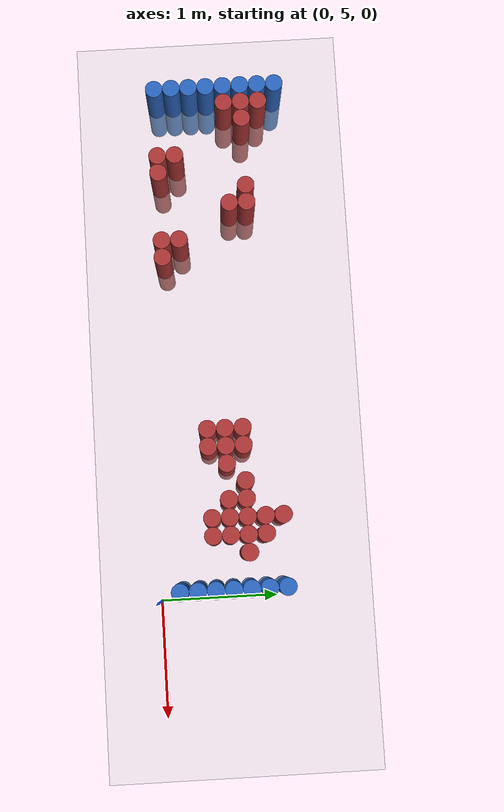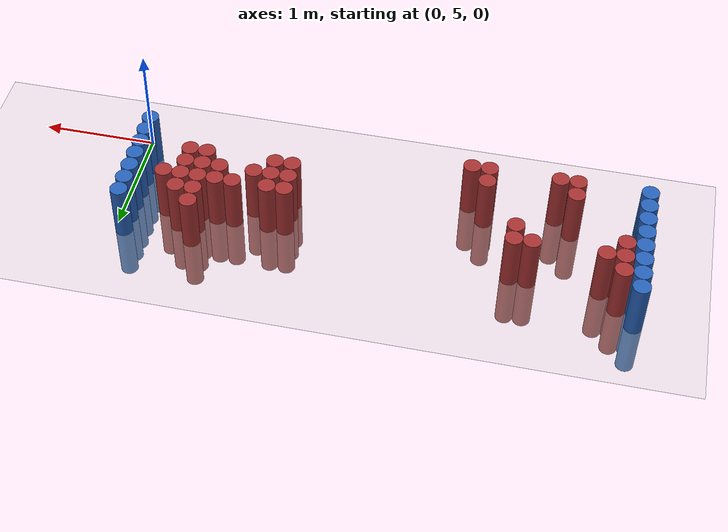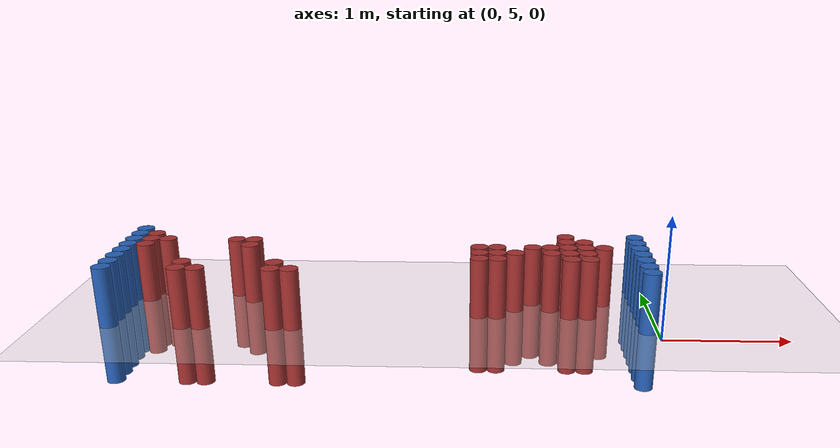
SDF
<sdf version="1.6">
 <world name="default">
  <model name="ground_plane">
   <static>1</static>
   <link name="link">
    <collision name="collision">
     <geometry><plane><normal>0 0 1</normal><size>100 100</size></plane></geometry>
     <surface><friction><ode><mu>100</mu><mu2>50</mu2></ode></friction></surface>
    </collision>
    <visual name="visual">
     <cast_shadows>0</cast_shadows>
     <geometry><plane><normal>0 0 1</normal><size>100 100</size></plane></geometry>
     <material>
      <script><uri>file://media/materials/scripts/gazebo.material</uri><name>Gazebo/Grey</name></script>
     </material>
    </visual>
   </link>
  </model>
  <model name="unit_cylinder_96">
   <static>1</static>
   <pose>-4.425000 5.175000 0.000000 0.000000 0.000000 0.000000</pose>
   <link name="link">
    <inertial>
     <mass>1</mass>
     <inertia><ixx>0.145833</ixx><ixy>0</ixy><ixz>0</ixz><iyy>0.145833</iyy><iyz>0</iyz><izz>0.125</izz></inertia>
    </inertial>
    <collision name="collision">
     <geometry><cylinder><radius>0.075000</radius><length>1</length></cylinder></geometry>
    </collision>
    <visual name="visual">
     <geometry><cylinder><radius>0.075000</radius><length>1</length></cylinder></geometry>
     <material>
      <ambient>0.152000 0.379000 0.720000 1</ambient>
      <diffuse>0.152000 0.379000 0.720000 1</diffuse>
     </material>
     <material>
      <script><name>Gazebo/Grey</name><uri>file://media/materials/scripts/gazebo.material</uri></script>
     </material>
    </visual>
   </link>
  </model>
  <model name="unit_cylinder_97">
   <static>1</static>
   <pose>-4.425000 5.325000 0.000000 0.000000 0.000000 0.000000</pose>
   <link name="link">
    <inertial>
     <mass>1</mass>
     <inertia><ixx>0.145833</ixx><ixy>0</ixy><ixz>0</ixz><iyy>0.145833</iyy><iyz>0</iyz><izz>0.125</izz></inertia>
    </inertial>
    <collision name="collision">
     <geometry><cylinder><radius>0.075000</radius><length>1</length></cylinder></geometry>
    </collision>
    <visual name="visual">
     <geometry><cylinder><radius>0.075000</radius><length>1</length></cylinder></geometry>
     <material>
      <ambient>0.152000 0.379000 0.720000 1</ambient>
      <diffuse>0.152000 0.379000 0.720000 1</diffuse>
     </material>
     <material>
      <script><name>Gazebo/Grey</name><uri>file://media/materials/scripts/gazebo.material</uri></script>
     </material>
    </visual>
   </link>
  </model>
  <model name="unit_cylinder_98">
   <static>1</static>
   <pose>-4.425000 5.475000 0.000000 0.000000 0.000000 0.000000</pose>
   <link name="link">
    <inertial>
     <mass>1</mass>
     <inertia><ixx>0.145833</ixx><ixy>0</ixy><ixz>0</ixz><iyy>0.145833</iyy><iyz>0</iyz><izz>0.125</izz></inertia>
    </inertial>
    <collision name="collision">
     <geometry><cylinder><radius>0.075000</radius><length>1</length></cylinder></geometry>
    </collision>
    <visual name="visual">
     <geometry><cylinder><radius>0.075000</radius><length>1</length></cylinder></geometry>
     <material>
      <ambient>0.152000 0.379000 0.720000 1</ambient>
      <diffuse>0.152000 0.379000 0.720000 1</diffuse>
     </material>
     <material>
      <script><name>Gazebo/Grey</name><uri>file://media/materials/scripts/gazebo.material</uri></script>
     </material>
    </visual>
   </link>
  </model>
  <model name="unit_cylinder_99">
   <static>1</static>
   <pose>-4.425000 5.625000 0.000000 0.000000 0.000000 0.000000</pose>
   <link name="link">
    <inertial>
     <mass>1</mass>
     <inertia><ixx>0.145833</ixx><ixy>0</ixy><ixz>0</ixz><iyy>0.145833</iyy><iyz>0</iyz><izz>0.125</izz></inertia>
    </inertial>
    <collision name="collision">
     <geometry><cylinder><radius>0.075000</radius><length>1</length></cylinder></geometry>
    </collision>
    <visual name="visual">
     <geometry><cylinder><radius>0.075000</radius><length>1</length></cylinder></geometry>
     <material>
      <ambient>0.152000 0.379000 0.720000 1</ambient>
      <diffuse>0.152000 0.379000 0.720000 1</diffuse>
     </material>
     <material>
      <script><name>Gazebo/Grey</name><uri>file://media/materials/scripts/gazebo.material</uri></script>
     </material>
    </visual>
   </link>
  </model>
  <model name="unit_cylinder_100">
   <static>1</static>
   <pose>-4.425000 5.775000 0.000000 0.000000 0.000000 0.000000</pose>
   <link name="link">
    <inertial>
     <mass>1</mass>
     <inertia><ixx>0.145833</ixx><ixy>0</ixy><ixz>0</ixz><iyy>0.145833</iyy><iyz>0</iyz><izz>0.125</izz></inertia>
    </inertial>
    <collision name="collision">
     <geometry><cylinder><radius>0.075000</radius><length>1</length></cylinder></geometry>
    </collision>
    <visual name="visual">
     <geometry><cylinder><radius>0.075000</radius><length>1</length></cylinder></geometry>
     <material>
      <ambient>0.152000 0.379000 0.720000 1</ambient>
      <diffuse>0.152000 0.379000 0.720000 1</diffuse>
     </material>
     <material>
      <script><name>Gazebo/Grey</name><uri>file://media/materials/scripts/gazebo.material</uri></script>
     </material>
    </visual>
   </link>
  </model>
  <model name="unit_cylinder_101">
   <static>1</static>
   <pose>-4.425000 5.925000 0.000000 0.000000 0.000000 0.000000</pose>
   <link name="link">
    <inertial>
     <mass>1</mass>
     <inertia><ixx>0.145833</ixx><ixy>0</ixy><ixz>0</ixz><iyy>0.145833</iyy><iyz>0</iyz><izz>0.125</izz></inertia>
    </inertial>
    <collision name="collision">
     <geometry><cylinder><radius>0.075000</radius><length>1</length></cylinder></geometry>
    </collision>
    <visual name="visual">
     <geometry><cylinder><radius>0.075000</radius><length>1</length></cylinder></geometry>
     <material>
      <ambient>0.152000 0.379000 0.720000 1</ambient>
      <diffuse>0.152000 0.379000 0.720000 1</diffuse>
     </material>
     <material>
      <script><name>Gazebo/Grey</name><uri>file://media/materials/scripts/gazebo.material</uri></script>
     </material>
    </visual>
   </link>
  </model>
  <model name="unit_cylinder_102">
   <static>1</static>
   <pose>-4.425000 6.075000 0.000000 0.000000 0.000000 0.000000</pose>
   <link name="link">
    <inertial>
     <mass>1</mass>
     <inertia><ixx>0.145833</ixx><ixy>0</ixy><ixz>0</ixz><iyy>0.145833</iyy><iyz>0</iyz><izz>0.125</izz></inertia>
    </inertial>
    <collision name="collision">
     <geometry><cylinder><radius>0.075000</radius><length>1</length></cylinder></geometry>
    </collision>
    <visual name="visual">
     <geometry><cylinder><radius>0.075000</radius><length>1</length></cylinder></geometry>
     <material>
      <ambient>0.152000 0.379000 0.720000 1</ambient>
      <diffuse>0.152000 0.379000 0.720000 1</diffuse>
     </material>
     <material>
      <script><name>Gazebo/Grey</name><uri>file://media/materials/scripts/gazebo.material</uri></script>
     </material>
    </visual>
   </link>
  </model>
  <model name="unit_cylinder_103">
   <static>1</static>
   <pose>-4.425000 6.225000 0.000000 0.000000 0.000000 0.000000</pose>
   <link name="link">
    <inertial>
     <mass>1</mass>
     <inertia><ixx>0.145833</ixx><ixy>0</ixy><ixz>0</ixz><iyy>0.145833</iyy><iyz>0</iyz><izz>0.125</izz></inertia>
    </inertial>
    <collision name="collision">
     <geometry><cylinder><radius>0.075000</radius><length>1</length></cylinder></geometry>
    </collision>
    <visual name="visual">
     <geometry><cylinder><radius>0.075000</radius><length>1</length></cylinder></geometry>
     <material>
      <ambient>0.152000 0.379000 0.720000 1</ambient>
      <diffuse>0.152000 0.379000 0.720000 1</diffuse>
     </material>
     <material>
      <script><name>Gazebo/Grey</name><uri>file://media/materials/scripts/gazebo.material</uri></script>
     </material>
    </visual>
   </link>
  </model>
  <model name="unit_cylinder_126">
   <static>1</static>
   <pose>-4.275000 5.775000 0.000000 0.000000 0.000000 0.000000</pose>
   <link name="link">
    <inertial>
     <mass>1</mass>
     <inertia><ixx>0.145833</ixx><ixy>0</ixy><ixz>0</ixz><iyy>0.145833</iyy><iyz>0</iyz><izz>0.125</izz></inertia>
    </inertial>
    <collision name="collision">
     <geometry><cylinder><radius>0.075000</radius><length>1</length></cylinder></geometry>
    </collision>
    <visual name="visual">
     <geometry><cylinder><radius>0.075000</radius><length>1</length></cylinder></geometry>
     <material>
      <ambient>0.648000 0.192000 0.192000 1</ambient>
      <diffuse>0.648000 0.192000 0.192000 1</diffuse>
     </material>
     <material>
      <script><name>Gazebo/Grey</name><uri>file://media/materials/scripts/gazebo.material</uri></script>
     </material>
    </visual>
   </link>
  </model>
  <model name="unit_cylinder_127">
   <static>1</static>
   <pose>-4.275000 5.925000 0.000000 0.000000 0.000000 0.000000</pose>
   <link name="link">
    <inertial>
     <mass>1</mass>
     <inertia><ixx>0.145833</ixx><ixy>0</ixy><ixz>0</ixz><iyy>0.145833</iyy><iyz>0</iyz><izz>0.125</izz></inertia>
    </inertial>
    <collision name="collision">
     <geometry><cylinder><radius>0.075000</radius><length>1</length></cylinder></geometry>
    </collision>
    <visual name="visual">
     <geometry><cylinder><radius>0.075000</radius><length>1</length></cylinder></geometry>
     <material>
      <ambient>0.648000 0.192000 0.192000 1</ambient>
      <diffuse>0.648000 0.192000 0.192000 1</diffuse>
     </material>
     <material>
      <script><name>Gazebo/Grey</name><uri>file://media/materials/scripts/gazebo.material</uri></script>
     </material>
    </visual>
   </link>
  </model>
  <model name="unit_cylinder_128">
   <static>1</static>
   <pose>-4.275000 6.075000 0.000000 0.000000 0.000000 0.000000</pose>
   <link name="link">
    <inertial>
     <mass>1</mass>
     <inertia><ixx>0.145833</ixx><ixy>0</ixy><ixz>0</ixz><iyy>0.145833</iyy><iyz>0</iyz><izz>0.125</izz></inertia>
    </inertial>
    <collision name="collision">
     <geometry><cylinder><radius>0.075000</radius><length>1</length></cylinder></geometry>
    </collision>
    <visual name="visual">
     <geometry><cylinder><radius>0.075000</radius><length>1</length></cylinder></geometry>
     <material>
      <ambient>0.648000 0.192000 0.192000 1</ambient>
      <diffuse>0.648000 0.192000 0.192000 1</diffuse>
     </material>
     <material>
      <script><name>Gazebo/Grey</name><uri>file://media/materials/scripts/gazebo.material</uri></script>
     </material>
    </visual>
   </link>
  </model>
  <model name="unit_cylinder_137">
   <static>1</static>
   <pose>-4.125000 5.925000 0.000000 0.000000 0.000000 0.000000</pose>
   <link name="link">
    <inertial>
     <mass>1</mass>
     <inertia><ixx>0.145833</ixx><ixy>0</ixy><ixz>0</ixz><iyy>0.145833</iyy><iyz>0</iyz><izz>0.125</izz></inertia>
    </inertial>
    <collision name="collision">
     <geometry><cylinder><radius>0.075000</radius><length>1</length></cylinder></geometry>
    </collision>
    <visual name="visual">
     <geometry><cylinder><radius>0.075000</radius><length>1</length></cylinder></geometry>
     <material>
      <ambient>0.648000 0.192000 0.192000 1</ambient>
      <diffuse>0.648000 0.192000 0.192000 1</diffuse>
     </material>
     <material>
      <script><name>Gazebo/Grey</name><uri>file://media/materials/scripts/gazebo.material</uri></script>
     </material>
    </visual>
   </link>
  </model>
  <model name="unit_cylinder_153">
   <static>1</static>
   <pose>-3.825000 5.175000 0.000000 0.000000 0.000000 0.000000</pose>
   <link name="link">
    <inertial>
     <mass>1</mass>
     <inertia><ixx>0.145833</ixx><ixy>0</ixy><ixz>0</ixz><iyy>0.145833</iyy><iyz>0</iyz><izz>0.125</izz></inertia>
    </inertial>
    <collision name="collision">
     <geometry><cylinder><radius>0.075000</radius><length>1</length></cylinder></geometry>
    </collision>
    <visual name="visual">
     <geometry><cylinder><radius>0.075000</radius><length>1</length></cylinder></geometry>
     <material>
      <ambient>0.648000 0.192000 0.192000 1</ambient>
      <diffuse>0.648000 0.192000 0.192000 1</diffuse>
     </material>
     <material>
      <script><name>Gazebo/Grey</name><uri>file://media/materials/scripts/gazebo.material</uri></script>
     </material>
    </visual>
   </link>
  </model>
  <model name="unit_cylinder_154">
   <static>1</static>
   <pose>-3.825000 5.325000 0.000000 0.000000 0.000000 0.000000</pose>
   <link name="link">
    <inertial>
     <mass>1</mass>
     <inertia><ixx>0.145833</ixx><ixy>0</ixy><ixz>0</ixz><iyy>0.145833</iyy><iyz>0</iyz><izz>0.125</izz></inertia>
    </inertial>
    <collision name="collision">
     <geometry><cylinder><radius>0.075000</radius><length>1</length></cylinder></geometry>
    </collision>
    <visual name="visual">
     <geometry><cylinder><radius>0.075000</radius><length>1</length></cylinder></geometry>
     <material>
      <ambient>0.648000 0.192000 0.192000 1</ambient>
      <diffuse>0.648000 0.192000 0.192000 1</diffuse>
     </material>
     <material>
      <script><name>Gazebo/Grey</name><uri>file://media/materials/scripts/gazebo.material</uri></script>
     </material>
    </visual>
   </link>
  </model>
  <model name="unit_cylinder_161">
   <static>1</static>
   <pose>-3.675000 5.175000 0.000000 0.000000 0.000000 0.000000</pose>
   <link name="link">
    <inertial>
     <mass>1</mass>
     <inertia><ixx>0.145833</ixx><ixy>0</ixy><ixz>0</ixz><iyy>0.145833</iyy><iyz>0</iyz><izz>0.125</izz></inertia>
    </inertial>
    <collision name="collision">
     <geometry><cylinder><radius>0.075000</radius><length>1</length></cylinder></geometry>
    </collision>
    <visual name="visual">
     <geometry><cylinder><radius>0.075000</radius><length>1</length></cylinder></geometry>
     <material>
      <ambient>0.648000 0.192000 0.192000 1</ambient>
      <diffuse>0.648000 0.192000 0.192000 1</diffuse>
     </material>
     <material>
      <script><name>Gazebo/Grey</name><uri>file://media/materials/scripts/gazebo.material</uri></script>
     </material>
    </visual>
   </link>
  </model>
  <model name="unit_cylinder_172">
   <static>1</static>
   <pose>-3.525000 5.925000 0.000000 0.000000 0.000000 0.000000</pose>
   <link name="link">
    <inertial>
     <mass>1</mass>
     <inertia><ixx>0.145833</ixx><ixy>0</ixy><ixz>0</ixz><iyy>0.145833</iyy><iyz>0</iyz><izz>0.125</izz></inertia>
    </inertial>
    <collision name="collision">
     <geometry><cylinder><radius>0.075000</radius><length>1</length></cylinder></geometry>
    </collision>
    <visual name="visual">
     <geometry><cylinder><radius>0.075000</radius><length>1</length></cylinder></geometry>
     <material>
      <ambient>0.648000 0.192000 0.192000 1</ambient>
      <diffuse>0.648000 0.192000 0.192000 1</diffuse>
     </material>
     <material>
      <script><name>Gazebo/Grey</name><uri>file://media/materials/scripts/gazebo.material</uri></script>
     </material>
    </visual>
   </link>
  </model>
  <model name="unit_cylinder_180">
   <static>1</static>
   <pose>-3.375000 5.775000 0.000000 0.000000 0.000000 0.000000</pose>
   <link name="link">
    <inertial>
     <mass>1</mass>
     <inertia><ixx>0.145833</ixx><ixy>0</ixy><ixz>0</ixz><iyy>0.145833</iyy><iyz>0</iyz><izz>0.125</izz></inertia>
    </inertial>
    <collision name="collision">
     <geometry><cylinder><radius>0.075000</radius><length>1</length></cylinder></geometry>
    </collision>
    <visual name="visual">
     <geometry><cylinder><radius>0.075000</radius><length>1</length></cylinder></geometry>
     <material>
      <ambient>0.648000 0.192000 0.192000 1</ambient>
      <diffuse>0.648000 0.192000 0.192000 1</diffuse>
     </material>
     <material>
      <script><name>Gazebo/Grey</name><uri>file://media/materials/scripts/gazebo.material</uri></script>
     </material>
    </visual>
   </link>
  </model>
  <model name="unit_cylinder_181">
   <static>1</static>
   <pose>-3.375000 5.925000 0.000000 0.000000 0.000000 0.000000</pose>
   <link name="link">
    <inertial>
     <mass>1</mass>
     <inertia><ixx>0.145833</ixx><ixy>0</ixy><ixz>0</ixz><iyy>0.145833</iyy><iyz>0</iyz><izz>0.125</izz></inertia>
    </inertial>
    <collision name="collision">
     <geometry><cylinder><radius>0.075000</radius><length>1</length></cylinder></geometry>
    </collision>
    <visual name="visual">
     <geometry><cylinder><radius>0.075000</radius><length>1</length></cylinder></geometry>
     <material>
      <ambient>0.648000 0.192000 0.192000 1</ambient>
      <diffuse>0.648000 0.192000 0.192000 1</diffuse>
     </material>
     <material>
      <script><name>Gazebo/Grey</name><uri>file://media/materials/scripts/gazebo.material</uri></script>
     </material>
    </visual>
   </link>
  </model>
  <model name="unit_cylinder_198">
   <static>1</static>
   <pose>-3.075000 5.175000 0.000000 0.000000 0.000000 0.000000</pose>
   <link name="link">
    <inertial>
     <mass>1</mass>
     <inertia><ixx>0.145833</ixx><ixy>0</ixy><ixz>0</ixz><iyy>0.145833</iyy><iyz>0</iyz><izz>0.125</izz></inertia>
    </inertial>
    <collision name="collision">
     <geometry><cylinder><radius>0.075000</radius><length>1</length></cylinder></geometry>
    </collision>
    <visual name="visual">
     <geometry><cylinder><radius>0.075000</radius><length>1</length></cylinder></geometry>
     <material>
      <ambient>0.648000 0.192000 0.192000 1</ambient>
      <diffuse>0.648000 0.192000 0.192000 1</diffuse>
     </material>
     <material>
      <script><name>Gazebo/Grey</name><uri>file://media/materials/scripts/gazebo.material</uri></script>
     </material>
    </visual>
   </link>
  </model>
  <model name="unit_cylinder_199">
   <static>1</static>
   <pose>-3.075000 5.325000 0.000000 0.000000 0.000000 0.000000</pose>
   <link name="link">
    <inertial>
     <mass>1</mass>
     <inertia><ixx>0.145833</ixx><ixy>0</ixy><ixz>0</ixz><iyy>0.145833</iyy><iyz>0</iyz><izz>0.125</izz></inertia>
    </inertial>
    <collision name="collision">
     <geometry><cylinder><radius>0.075000</radius><length>1</length></cylinder></geometry>
    </collision>
    <visual name="visual">
     <geometry><cylinder><radius>0.075000</radius><length>1</length></cylinder></geometry>
     <material>
      <ambient>0.648000 0.192000 0.192000 1</ambient>
      <diffuse>0.648000 0.192000 0.192000 1</diffuse>
     </material>
     <material>
      <script><name>Gazebo/Grey</name><uri>file://media/materials/scripts/gazebo.material</uri></script>
     </material>
    </visual>
   </link>
  </model>
  <model name="unit_cylinder_209">
   <static>1</static>
   <pose>-2.925000 5.175000 0.000000 0.000000 0.000000 0.000000</pose>
   <link name="link">
    <inertial>
     <mass>1</mass>
     <inertia><ixx>0.145833</ixx><ixy>0</ixy><ixz>0</ixz><iyy>0.145833</iyy><iyz>0</iyz><izz>0.125</izz></inertia>
    </inertial>
    <collision name="collision">
     <geometry><cylinder><radius>0.075000</radius><length>1</length></cylinder></geometry>
    </collision>
    <visual name="visual">
     <geometry><cylinder><radius>0.075000</radius><length>1</length></cylinder></geometry>
     <material>
      <ambient>0.648000 0.192000 0.192000 1</ambient>
      <diffuse>0.648000 0.192000 0.192000 1</diffuse>
     </material>
     <material>
      <script><name>Gazebo/Grey</name><uri>file://media/materials/scripts/gazebo.material</uri></script>
     </material>
    </visual>
   </link>
  </model>
  <model name="unit_cylinder_229">
   <static>1</static>
   <pose>-1.425000 5.475000 0.000000 0.000000 0.000000 0.000000</pose>
   <link name="link">
    <inertial>
     <mass>1</mass>
     <inertia><ixx>0.145833</ixx><ixy>0</ixy><ixz>0</ixz><iyy>0.145833</iyy><iyz>0</iyz><izz>0.125</izz></inertia>
    </inertial>
    <collision name="collision">
     <geometry><cylinder><radius>0.075000</radius><length>1</length></cylinder></geometry>
    </collision>
    <visual name="visual">
     <geometry><cylinder><radius>0.075000</radius><length>1</length></cylinder></geometry>
     <material>
      <ambient>0.648000 0.192000 0.192000 1</ambient>
      <diffuse>0.648000 0.192000 0.192000 1</diffuse>
     </material>
     <material>
      <script><name>Gazebo/Grey</name><uri>file://media/materials/scripts/gazebo.material</uri></script>
     </material>
    </visual>
   </link>
  </model>
  <model name="unit_cylinder_230">
   <static>1</static>
   <pose>-1.425000 5.625000 0.000000 0.000000 0.000000 0.000000</pose>
   <link name="link">
    <inertial>
     <mass>1</mass>
     <inertia><ixx>0.145833</ixx><ixy>0</ixy><ixz>0</ixz><iyy>0.145833</iyy><iyz>0</iyz><izz>0.125</izz></inertia>
    </inertial>
    <collision name="collision">
     <geometry><cylinder><radius>0.075000</radius><length>1</length></cylinder></geometry>
    </collision>
    <visual name="visual">
     <geometry><cylinder><radius>0.075000</radius><length>1</length></cylinder></geometry>
     <material>
      <ambient>0.648000 0.192000 0.192000 1</ambient>
      <diffuse>0.648000 0.192000 0.192000 1</diffuse>
     </material>
     <material>
      <script><name>Gazebo/Grey</name><uri>file://media/materials/scripts/gazebo.material</uri></script>
     </material>
    </visual>
   </link>
  </model>
  <model name="unit_cylinder_231">
   <static>1</static>
   <pose>-1.425000 5.775000 0.000000 0.000000 0.000000 0.000000</pose>
   <link name="link">
    <inertial>
     <mass>1</mass>
     <inertia><ixx>0.145833</ixx><ixy>0</ixy><ixz>0</ixz><iyy>0.145833</iyy><iyz>0</iyz><izz>0.125</izz></inertia>
    </inertial>
    <collision name="collision">
     <geometry><cylinder><radius>0.075000</radius><length>1</length></cylinder></geometry>
    </collision>
    <visual name="visual">
     <geometry><cylinder><radius>0.075000</radius><length>1</length></cylinder></geometry>
     <material>
      <ambient>0.648000 0.192000 0.192000 1</ambient>
      <diffuse>0.648000 0.192000 0.192000 1</diffuse>
     </material>
     <material>
      <script><name>Gazebo/Grey</name><uri>file://media/materials/scripts/gazebo.material</uri></script>
     </material>
    </visual>
   </link>
  </model>
  <model name="unit_cylinder_235">
   <static>1</static>
   <pose>-1.275000 5.475000 0.000000 0.000000 0.000000 0.000000</pose>
   <link name="link">
    <inertial>
     <mass>1</mass>
     <inertia><ixx>0.145833</ixx><ixy>0</ixy><ixz>0</ixz><iyy>0.145833</iyy><iyz>0</iyz><izz>0.125</izz></inertia>
    </inertial>
    <collision name="collision">
     <geometry><cylinder><radius>0.075000</radius><length>1</length></cylinder></geometry>
    </collision>
    <visual name="visual">
     <geometry><cylinder><radius>0.075000</radius><length>1</length></cylinder></geometry>
     <material>
      <ambient>0.648000 0.192000 0.192000 1</ambient>
      <diffuse>0.648000 0.192000 0.192000 1</diffuse>
     </material>
     <material>
      <script><name>Gazebo/Grey</name><uri>file://media/materials/scripts/gazebo.material</uri></script>
     </material>
    </visual>
   </link>
  </model>
  <model name="unit_cylinder_236">
   <static>1</static>
   <pose>-1.275000 5.625000 0.000000 0.000000 0.000000 0.000000</pose>
   <link name="link">
    <inertial>
     <mass>1</mass>
     <inertia><ixx>0.145833</ixx><ixy>0</ixy><ixz>0</ixz><iyy>0.145833</iyy><iyz>0</iyz><izz>0.125</izz></inertia>
    </inertial>
    <collision name="collision">
     <geometry><cylinder><radius>0.075000</radius><length>1</length></cylinder></geometry>
    </collision>
    <visual name="visual">
     <geometry><cylinder><radius>0.075000</radius><length>1</length></cylinder></geometry>
     <material>
      <ambient>0.648000 0.192000 0.192000 1</ambient>
      <diffuse>0.648000 0.192000 0.192000 1</diffuse>
     </material>
     <material>
      <script><name>Gazebo/Grey</name><uri>file://media/materials/scripts/gazebo.material</uri></script>
     </material>
    </visual>
   </link>
  </model>
  <model name="unit_cylinder_237">
   <static>1</static>
   <pose>-1.275000 5.775000 0.000000 0.000000 0.000000 0.000000</pose>
   <link name="link">
    <inertial>
     <mass>1</mass>
     <inertia><ixx>0.145833</ixx><ixy>0</ixy><ixz>0</ixz><iyy>0.145833</iyy><iyz>0</iyz><izz>0.125</izz></inertia>
    </inertial>
    <collision name="collision">
     <geometry><cylinder><radius>0.075000</radius><length>1</length></cylinder></geometry>
    </collision>
    <visual name="visual">
     <geometry><cylinder><radius>0.075000</radius><length>1</length></cylinder></geometry>
     <material>
      <ambient>0.648000 0.192000 0.192000 1</ambient>
      <diffuse>0.648000 0.192000 0.192000 1</diffuse>
     </material>
     <material>
      <script><name>Gazebo/Grey</name><uri>file://media/materials/scripts/gazebo.material</uri></script>
     </material>
    </visual>
   </link>
  </model>
  <model name="unit_cylinder_245">
   <static>1</static>
   <pose>-1.125000 5.625000 0.000000 0.000000 0.000000 0.000000</pose>
   <link name="link">
    <inertial>
     <mass>1</mass>
     <inertia><ixx>0.145833</ixx><ixy>0</ixy><ixz>0</ixz><iyy>0.145833</iyy><iyz>0</iyz><izz>0.125</izz></inertia>
    </inertial>
    <collision name="collision">
     <geometry><cylinder><radius>0.075000</radius><length>1</length></cylinder></geometry>
    </collision>
    <visual name="visual">
     <geometry><cylinder><radius>0.075000</radius><length>1</length></cylinder></geometry>
     <material>
      <ambient>0.648000 0.192000 0.192000 1</ambient>
      <diffuse>0.648000 0.192000 0.192000 1</diffuse>
     </material>
     <material>
      <script><name>Gazebo/Grey</name><uri>file://media/materials/scripts/gazebo.material</uri></script>
     </material>
    </visual>
   </link>
  </model>
  <model name="unit_cylinder_253">
   <static>1</static>
   <pose>-0.975000 5.775000 0.000000 0.000000 0.000000 0.000000</pose>
   <link name="link">
    <inertial>
     <mass>1</mass>
     <inertia><ixx>0.145833</ixx><ixy>0</ixy><ixz>0</ixz><iyy>0.145833</iyy><iyz>0</iyz><izz>0.125</izz></inertia>
    </inertial>
    <collision name="collision">
     <geometry><cylinder><radius>0.075000</radius><length>1</length></cylinder></geometry>
    </collision>
    <visual name="visual">
     <geometry><cylinder><radius>0.075000</radius><length>1</length></cylinder></geometry>
     <material>
      <ambient>0.648000 0.192000 0.192000 1</ambient>
      <diffuse>0.648000 0.192000 0.192000 1</diffuse>
     </material>
     <material>
      <script><name>Gazebo/Grey</name><uri>file://media/materials/scripts/gazebo.material</uri></script>
     </material>
    </visual>
   </link>
  </model>
  <model name="unit_cylinder_257">
   <static>1</static>
   <pose>-0.825000 5.625000 0.000000 0.000000 0.000000 0.000000</pose>
   <link name="link">
    <inertial>
     <mass>1</mass>
     <inertia><ixx>0.145833</ixx><ixy>0</ixy><ixz>0</ixz><iyy>0.145833</iyy><iyz>0</iyz><izz>0.125</izz></inertia>
    </inertial>
    <collision name="collision">
     <geometry><cylinder><radius>0.075000</radius><length>1</length></cylinder></geometry>
    </collision>
    <visual name="visual">
     <geometry><cylinder><radius>0.075000</radius><length>1</length></cylinder></geometry>
     <material>
      <ambient>0.648000 0.192000 0.192000 1</ambient>
      <diffuse>0.648000 0.192000 0.192000 1</diffuse>
     </material>
     <material>
      <script><name>Gazebo/Grey</name><uri>file://media/materials/scripts/gazebo.material</uri></script>
     </material>
    </visual>
   </link>
  </model>
  <model name="unit_cylinder_258">
   <static>1</static>
   <pose>-0.825000 5.775000 0.000000 0.000000 0.000000 0.000000</pose>
   <link name="link">
    <inertial>
     <mass>1</mass>
     <inertia><ixx>0.145833</ixx><ixy>0</ixy><ixz>0</ixz><iyy>0.145833</iyy><iyz>0</iyz><izz>0.125</izz></inertia>
    </inertial>
    <collision name="collision">
     <geometry><cylinder><radius>0.075000</radius><length>1</length></cylinder></geometry>
    </collision>
    <visual name="visual">
     <geometry><cylinder><radius>0.075000</radius><length>1</length></cylinder></geometry>
     <material>
      <ambient>0.648000 0.192000 0.192000 1</ambient>
      <diffuse>0.648000 0.192000 0.192000 1</diffuse>
     </material>
     <material>
      <script><name>Gazebo/Grey</name><uri>file://media/materials/scripts/gazebo.material</uri></script>
     </material>
    </visual>
   </link>
  </model>
  <model name="unit_cylinder_261">
   <static>1</static>
   <pose>-0.675000 5.475000 0.000000 0.000000 0.000000 0.000000</pose>
   <link name="link">
    <inertial>
     <mass>1</mass>
     <inertia><ixx>0.145833</ixx><ixy>0</ixy><ixz>0</ixz><iyy>0.145833</iyy><iyz>0</iyz><izz>0.125</izz></inertia>
    </inertial>
    <collision name="collision">
     <geometry><cylinder><radius>0.075000</radius><length>1</length></cylinder></geometry>
    </collision>
    <visual name="visual">
     <geometry><cylinder><radius>0.075000</radius><length>1</length></cylinder></geometry>
     <material>
      <ambient>0.648000 0.192000 0.192000 1</ambient>
      <diffuse>0.648000 0.192000 0.192000 1</diffuse>
     </material>
     <material>
      <script><name>Gazebo/Grey</name><uri>file://media/materials/scripts/gazebo.material</uri></script>
     </material>
    </visual>
   </link>
  </model>
  <model name="unit_cylinder_262">
   <static>1</static>
   <pose>-0.675000 5.625000 0.000000 0.000000 0.000000 0.000000</pose>
   <link name="link">
    <inertial>
     <mass>1</mass>
     <inertia><ixx>0.145833</ixx><ixy>0</ixy><ixz>0</ixz><iyy>0.145833</iyy><iyz>0</iyz><izz>0.125</izz></inertia>
    </inertial>
    <collision name="collision">
     <geometry><cylinder><radius>0.075000</radius><length>1</length></cylinder></geometry>
    </collision>
    <visual name="visual">
     <geometry><cylinder><radius>0.075000</radius><length>1</length></cylinder></geometry>
     <material>
      <ambient>0.648000 0.192000 0.192000 1</ambient>
      <diffuse>0.648000 0.192000 0.192000 1</diffuse>
     </material>
     <material>
      <script><name>Gazebo/Grey</name><uri>file://media/materials/scripts/gazebo.material</uri></script>
     </material>
    </visual>
   </link>
  </model>
  <model name="unit_cylinder_263">
   <static>1</static>
   <pose>-0.675000 5.775000 0.000000 0.000000 0.000000 0.000000</pose>
   <link name="link">
    <inertial>
     <mass>1</mass>
     <inertia><ixx>0.145833</ixx><ixy>0</ixy><ixz>0</ixz><iyy>0.145833</iyy><iyz>0</iyz><izz>0.125</izz></inertia>
    </inertial>
    <collision name="collision">
     <geometry><cylinder><radius>0.075000</radius><length>1</length></cylinder></geometry>
    </collision>
    <visual name="visual">
     <geometry><cylinder><radius>0.075000</radius><length>1</length></cylinder></geometry>
     <material>
      <ambient>0.648000 0.192000 0.192000 1</ambient>
      <diffuse>0.648000 0.192000 0.192000 1</diffuse>
     </material>
     <material>
      <script><name>Gazebo/Grey</name><uri>file://media/materials/scripts/gazebo.material</uri></script>
     </material>
    </visual>
   </link>
  </model>
  <model name="unit_cylinder_264">
   <static>1</static>
   <pose>-0.675000 5.925000 0.000000 0.000000 0.000000 0.000000</pose>
   <link name="link">
    <inertial>
     <mass>1</mass>
     <inertia><ixx>0.145833</ixx><ixy>0</ixy><ixz>0</ixz><iyy>0.145833</iyy><iyz>0</iyz><izz>0.125</izz></inertia>
    </inertial>
    <collision name="collision">
     <geometry><cylinder><radius>0.075000</radius><length>1</length></cylinder></geometry>
    </collision>
    <visual name="visual">
     <geometry><cylinder><radius>0.075000</radius><length>1</length></cylinder></geometry>
     <material>
      <ambient>0.648000 0.192000 0.192000 1</ambient>
      <diffuse>0.648000 0.192000 0.192000 1</diffuse>
     </material>
     <material>
      <script><name>Gazebo/Grey</name><uri>file://media/materials/scripts/gazebo.material</uri></script>
     </material>
    </visual>
   </link>
  </model>
  <model name="unit_cylinder_265">
   <static>1</static>
   <pose>-0.675000 6.075000 0.000000 0.000000 0.000000 0.000000</pose>
   <link name="link">
    <inertial>
     <mass>1</mass>
     <inertia><ixx>0.145833</ixx><ixy>0</ixy><ixz>0</ixz><iyy>0.145833</iyy><iyz>0</iyz><izz>0.125</izz></inertia>
    </inertial>
    <collision name="collision">
     <geometry><cylinder><radius>0.075000</radius><length>1</length></cylinder></geometry>
    </collision>
    <visual name="visual">
     <geometry><cylinder><radius>0.075000</radius><length>1</length></cylinder></geometry>
     <material>
      <ambient>0.648000 0.192000 0.192000 1</ambient>
      <diffuse>0.648000 0.192000 0.192000 1</diffuse>
     </material>
     <material>
      <script><name>Gazebo/Grey</name><uri>file://media/materials/scripts/gazebo.material</uri></script>
     </material>
    </visual>
   </link>
  </model>
  <model name="unit_cylinder_276">
   <static>1</static>
   <pose>-0.525000 5.475000 0.000000 0.000000 0.000000 0.000000</pose>
   <link name="link">
    <inertial>
     <mass>1</mass>
     <inertia><ixx>0.145833</ixx><ixy>0</ixy><ixz>0</ixz><iyy>0.145833</iyy><iyz>0</iyz><izz>0.125</izz></inertia>
    </inertial>
    <collision name="collision">
     <geometry><cylinder><radius>0.075000</radius><length>1</length></cylinder></geometry>
    </collision>
    <visual name="visual">
     <geometry><cylinder><radius>0.075000</radius><length>1</length></cylinder></geometry>
     <material>
      <ambient>0.648000 0.192000 0.192000 1</ambient>
      <diffuse>0.648000 0.192000 0.192000 1</diffuse>
     </material>
     <material>
      <script><name>Gazebo/Grey</name><uri>file://media/materials/scripts/gazebo.material</uri></script>
     </material>
    </visual>
   </link>
  </model>
  <model name="unit_cylinder_277">
   <static>1</static>
   <pose>-0.525000 5.625000 0.000000 0.000000 0.000000 0.000000</pose>
   <link name="link">
    <inertial>
     <mass>1</mass>
     <inertia><ixx>0.145833</ixx><ixy>0</ixy><ixz>0</ixz><iyy>0.145833</iyy><iyz>0</iyz><izz>0.125</izz></inertia>
    </inertial>
    <collision name="collision">
     <geometry><cylinder><radius>0.075000</radius><length>1</length></cylinder></geometry>
    </collision>
    <visual name="visual">
     <geometry><cylinder><radius>0.075000</radius><length>1</length></cylinder></geometry>
     <material>
      <ambient>0.648000 0.192000 0.192000 1</ambient>
      <diffuse>0.648000 0.192000 0.192000 1</diffuse>
     </material>
     <material>
      <script><name>Gazebo/Grey</name><uri>file://media/materials/scripts/gazebo.material</uri></script>
     </material>
    </visual>
   </link>
  </model>
  <model name="unit_cylinder_278">
   <static>1</static>
   <pose>-0.525000 5.775000 0.000000 0.000000 0.000000 0.000000</pose>
   <link name="link">
    <inertial>
     <mass>1</mass>
     <inertia><ixx>0.145833</ixx><ixy>0</ixy><ixz>0</ixz><iyy>0.145833</iyy><iyz>0</iyz><izz>0.125</izz></inertia>
    </inertial>
    <collision name="collision">
     <geometry><cylinder><radius>0.075000</radius><length>1</length></cylinder></geometry>
    </collision>
    <visual name="visual">
     <geometry><cylinder><radius>0.075000</radius><length>1</length></cylinder></geometry>
     <material>
      <ambient>0.648000 0.192000 0.192000 1</ambient>
      <diffuse>0.648000 0.192000 0.192000 1</diffuse>
     </material>
     <material>
      <script><name>Gazebo/Grey</name><uri>file://media/materials/scripts/gazebo.material</uri></script>
     </material>
    </visual>
   </link>
  </model>
  <model name="unit_cylinder_279">
   <static>1</static>
   <pose>-0.525000 5.925000 0.000000 0.000000 0.000000 0.000000</pose>
   <link name="link">
    <inertial>
     <mass>1</mass>
     <inertia><ixx>0.145833</ixx><ixy>0</ixy><ixz>0</ixz><iyy>0.145833</iyy><iyz>0</iyz><izz>0.125</izz></inertia>
    </inertial>
    <collision name="collision">
     <geometry><cylinder><radius>0.075000</radius><length>1</length></cylinder></geometry>
    </collision>
    <visual name="visual">
     <geometry><cylinder><radius>0.075000</radius><length>1</length></cylinder></geometry>
     <material>
      <ambient>0.648000 0.192000 0.192000 1</ambient>
      <diffuse>0.648000 0.192000 0.192000 1</diffuse>
     </material>
     <material>
      <script><name>Gazebo/Grey</name><uri>file://media/materials/scripts/gazebo.material</uri></script>
     </material>
    </visual>
   </link>
  </model>
  <model name="unit_cylinder_289">
   <static>1</static>
   <pose>-0.375000 5.775000 0.000000 0.000000 0.000000 0.000000</pose>
   <link name="link">
    <inertial>
     <mass>1</mass>
     <inertia><ixx>0.145833</ixx><ixy>0</ixy><ixz>0</ixz><iyy>0.145833</iyy><iyz>0</iyz><izz>0.125</izz></inertia>
    </inertial>
    <collision name="collision">
     <geometry><cylinder><radius>0.075000</radius><length>1</length></cylinder></geometry>
    </collision>
    <visual name="visual">
     <geometry><cylinder><radius>0.075000</radius><length>1</length></cylinder></geometry>
     <material>
      <ambient>0.648000 0.192000 0.192000 1</ambient>
      <diffuse>0.648000 0.192000 0.192000 1</diffuse>
     </material>
     <material>
      <script><name>Gazebo/Grey</name><uri>file://media/materials/scripts/gazebo.material</uri></script>
     </material>
    </visual>
   </link>
  </model>
  <model name="unit_cylinder_308">
   <static>1</static>
   <pose>-0.075000 5.175000 0.000000 0.000000 0.000000 0.000000</pose>
   <link name="link">
    <inertial>
     <mass>1</mass>
     <inertia><ixx>0.145833</ixx><ixy>0</ixy><ixz>0</ixz><iyy>0.145833</iyy><iyz>0</iyz><izz>0.125</izz></inertia>
    </inertial>
    <collision name="collision">
     <geometry><cylinder><radius>0.075000</radius><length>1</length></cylinder></geometry>
    </collision>
    <visual name="visual">
     <geometry><cylinder><radius>0.075000</radius><length>1</length></cylinder></geometry>
     <material>
      <ambient>0.152000 0.379000 0.720000 1</ambient>
      <diffuse>0.152000 0.379000 0.720000 1</diffuse>
     </material>
     <material>
      <script><name>Gazebo/Grey</name><uri>file://media/materials/scripts/gazebo.material</uri></script>
     </material>
    </visual>
   </link>
  </model>
  <model name="unit_cylinder_309">
   <static>1</static>
   <pose>-0.075000 5.325000 0.000000 0.000000 0.000000 0.000000</pose>
   <link name="link">
    <inertial>
     <mass>1</mass>
     <inertia><ixx>0.145833</ixx><ixy>0</ixy><ixz>0</ixz><iyy>0.145833</iyy><iyz>0</iyz><izz>0.125</izz></inertia>
    </inertial>
    <collision name="collision">
     <geometry><cylinder><radius>0.075000</radius><length>1</length></cylinder></geometry>
    </collision>
    <visual name="visual">
     <geometry><cylinder><radius>0.075000</radius><length>1</length></cylinder></geometry>
     <material>
      <ambient>0.152000 0.379000 0.720000 1</ambient>
      <diffuse>0.152000 0.379000 0.720000 1</diffuse>
     </material>
     <material>
      <script><name>Gazebo/Grey</name><uri>file://media/materials/scripts/gazebo.material</uri></script>
     </material>
    </visual>
   </link>
  </model>
  <model name="unit_cylinder_310">
   <static>1</static>
   <pose>-0.075000 5.475000 0.000000 0.000000 0.000000 0.000000</pose>
   <link name="link">
    <inertial>
     <mass>1</mass>
     <inertia><ixx>0.145833</ixx><ixy>0</ixy><ixz>0</ixz><iyy>0.145833</iyy><iyz>0</iyz><izz>0.125</izz></inertia>
    </inertial>
    <collision name="collision">
     <geometry><cylinder><radius>0.075000</radius><length>1</length></cylinder></geometry>
    </collision>
    <visual name="visual">
     <geometry><cylinder><radius>0.075000</radius><length>1</length></cylinder></geometry>
     <material>
      <ambient>0.152000 0.379000 0.720000 1</ambient>
      <diffuse>0.152000 0.379000 0.720000 1</diffuse>
     </material>
     <material>
      <script><name>Gazebo/Grey</name><uri>file://media/materials/scripts/gazebo.material</uri></script>
     </material>
    </visual>
   </link>
  </model>
  <model name="unit_cylinder_311">
   <static>1</static>
   <pose>-0.075000 5.625000 0.000000 0.000000 0.000000 0.000000</pose>
   <link name="link">
    <inertial>
     <mass>1</mass>
     <inertia><ixx>0.145833</ixx><ixy>0</ixy><ixz>0</ixz><iyy>0.145833</iyy><iyz>0</iyz><izz>0.125</izz></inertia>
    </inertial>
    <collision name="collision">
     <geometry><cylinder><radius>0.075000</radius><length>1</length></cylinder></geometry>
    </collision>
    <visual name="visual">
     <geometry><cylinder><radius>0.075000</radius><length>1</length></cylinder></geometry>
     <material>
      <ambient>0.152000 0.379000 0.720000 1</ambient>
      <diffuse>0.152000 0.379000 0.720000 1</diffuse>
     </material>
     <material>
      <script><name>Gazebo/Grey</name><uri>file://media/materials/scripts/gazebo.material</uri></script>
     </material>
    </visual>
   </link>
  </model>
  <model name="unit_cylinder_312">
   <static>1</static>
   <pose>-0.075000 5.775000 0.000000 0.000000 0.000000 0.000000</pose>
   <link name="link">
    <inertial>
     <mass>1</mass>
     <inertia><ixx>0.145833</ixx><ixy>0</ixy><ixz>0</ixz><iyy>0.145833</iyy><iyz>0</iyz><izz>0.125</izz></inertia>
    </inertial>
    <collision name="collision">
     <geometry><cylinder><radius>0.075000</radius><length>1</length></cylinder></geometry>
    </collision>
    <visual name="visual">
     <geometry><cylinder><radius>0.075000</radius><length>1</length></cylinder></geometry>
     <material>
      <ambient>0.152000 0.379000 0.720000 1</ambient>
      <diffuse>0.152000 0.379000 0.720000 1</diffuse>
     </material>
     <material>
      <script><name>Gazebo/Grey</name><uri>file://media/materials/scripts/gazebo.material</uri></script>
     </material>
    </visual>
   </link>
  </model>
  <model name="unit_cylinder_313">
   <static>1</static>
   <pose>-0.075000 5.925000 0.000000 0.000000 0.000000 0.000000</pose>
   <link name="link">
    <inertial>
     <mass>1</mass>
     <inertia><ixx>0.145833</ixx><ixy>0</ixy><ixz>0</ixz><iyy>0.145833</iyy><iyz>0</iyz><izz>0.125</izz></inertia>
    </inertial>
    <collision name="collision">
     <geometry><cylinder><radius>0.075000</radius><length>1</length></cylinder></geometry>
    </collision>
    <visual name="visual">
     <geometry><cylinder><radius>0.075000</radius><length>1</length></cylinder></geometry>
     <material>
      <ambient>0.152000 0.379000 0.720000 1</ambient>
      <diffuse>0.152000 0.379000 0.720000 1</diffuse>
     </material>
     <material>
      <script><name>Gazebo/Grey</name><uri>file://media/materials/scripts/gazebo.material</uri></script>
     </material>
    </visual>
   </link>
  </model>
  <model name="unit_cylinder_314">
   <static>1</static>
   <pose>-0.075000 6.075000 0.000000 0.000000 0.000000 0.000000</pose>
   <link name="link">
    <inertial>
     <mass>1</mass>
     <inertia><ixx>0.145833</ixx><ixy>0</ixy><ixz>0</ixz><iyy>0.145833</iyy><iyz>0</iyz><izz>0.125</izz></inertia>
    </inertial>
    <collision name="collision">
     <geometry><cylinder><radius>0.075000</radius><length>1</length></cylinder></geometry>
    </collision>
    <visual name="visual">
     <geometry><cylinder><radius>0.075000</radius><length>1</length></cylinder></geometry>
     <material>
      <ambient>0.152000 0.379000 0.720000 1</ambient>
      <diffuse>0.152000 0.379000 0.720000 1</diffuse>
     </material>
     <material>
      <script><name>Gazebo/Grey</name><uri>file://media/materials/scripts/gazebo.material</uri></script>
     </material>
    </visual>
   </link>
  </model>
 </world>
</sdf>
